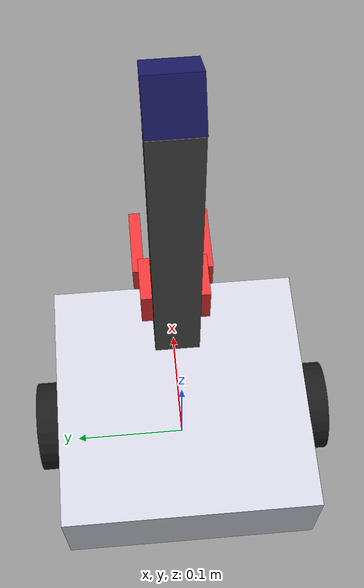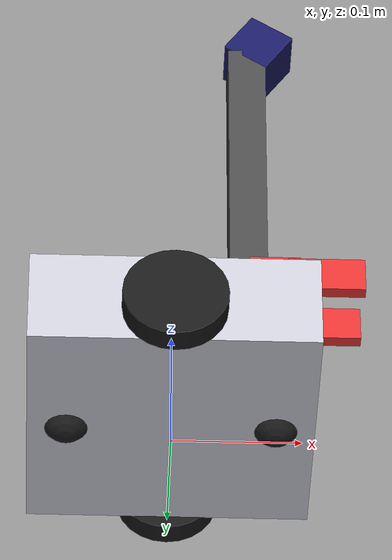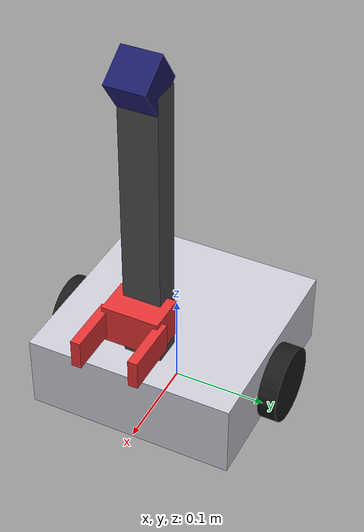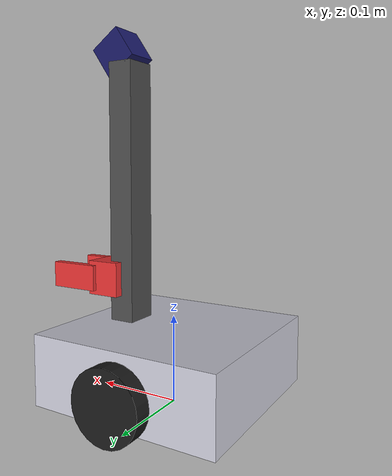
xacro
<?xml version="1.0"?>
<robot name="dummy_robot" xmlns:xacro="http://www.ros.org/wiki/xacro">

  <!-- MATERIALS -->
  <material name="chassis_color"><color rgba="0.8 0.8 0.85 1.0"/></material>
  <material name="wheel_color"><color rgba="0.1 0.1 0.1 1.0"/></material>
  <material name="mast_color"><color rgba="0.3 0.3 0.3 1.0"/></material>
  <material name="gripper_color"><color rgba="0.9 0.2 0.2 1.0"/></material>
  <material name="camera_color"><color rgba="0.1 0.1 0.4 1.0"/></material>

  <!-- BASE LINK -->
  <link name="base_footprint"/>

  <joint name="base_joint" type="fixed">
    <parent link="base_footprint"/>
    <child link="base_link"/>
    <origin xyz="0 0 0.05" rpy="0 0 0"/>
  </joint>

  <link name="base_link">
    <inertial>
      <mass value="1.2"/>
      <origin xyz="0 0 0.04"/>
      <inertia ixx="0.005" ixy="0" ixz="0" iyy="0.005" iyz="0" izz="0.008"/>
    </inertial>
    <visual>
      <geometry>
        <box size="0.22 0.22 0.08"/>
      </geometry>
      <material name="chassis_color"/>
    </visual>
    <collision>
      <geometry>
        <box size="0.22 0.22 0.08"/>
      </geometry>
    </collision>
  </link>

  <!-- LEFT WHEEL -->
  <joint name="left_wheel_joint" type="continuous">
    <parent link="base_link"/>
    <child link="left_wheel"/>
    <origin xyz="0 0.12 -0.01" rpy="-1.5708 0 0"/>
    <axis xyz="0 0 1"/>
    <dynamics damping="0.1" friction="0.05"/>
  </joint>

  <link name="left_wheel">
    <inertial>
      <mass value="0.2"/>
      <inertia ixx="0.0002" ixy="0" ixz="0" iyy="0.0002" iyz="0" izz="0.0002"/>
    </inertial>
    <visual>
      <geometry>
        <cylinder radius="0.04" length="0.02"/>
      </geometry>
      <material name="wheel_color"/>
    </visual>
    <collision>
      <geometry>
        <cylinder radius="0.04" length="0.02"/>
      </geometry>
      <surface>
        <friction>
          <ode>
            <mu>10.0</mu>
            <mu2>10.0</mu2>
            <kp>1000000.0</kp>
            <kd>10.0</kd>
          </ode>
        </friction>
      </surface>
    </collision>
  </link>

  <!-- RIGHT WHEEL -->
  <joint name="right_wheel_joint" type="continuous">
    <parent link="base_link"/>
    <child link="right_wheel"/>
    <origin xyz="0 -0.12 -0.01" rpy="-1.5708 0 0"/>
    <axis xyz="0 0 1"/>
    <dynamics damping="0.1" friction="0.05"/>
  </joint>

  <link name="right_wheel">
    <inertial>
      <mass value="0.2"/>
      <inertia ixx="0.0002" ixy="0" ixz="0" iyy="0.0002" iyz="0" izz="0.0002"/>
    </inertial>
    <visual>
      <geometry>
        <cylinder radius="0.04" length="0.02"/>
      </geometry>
      <material name="wheel_color"/>
    </visual>
    <collision>
      <geometry>
        <cylinder radius="0.04" length="0.02"/>
      </geometry>
      <surface>
        <friction>
          <ode>
            <mu>10.0</mu>
            <mu2>10.0</mu2>
            <kp>1000000.0</kp>
            <kd>10.0</kd>
          </ode>
        </friction>
      </surface>
    </collision>
  </link>

  <!-- FRONT CASTER (Frictionless Glider - Zero Drag) -->
  <joint name="front_caster_joint" type="fixed">
    <parent link="base_link"/>
    <child link="front_caster"/>
    <origin xyz="0.08 0 -0.029" rpy="0 0 0"/>
  </joint>

  <link name="front_caster">
    <visual>
      <geometry><sphere radius="0.02"/></geometry>
      <material name="wheel_color"/>
    </visual>
    <collision>
      <geometry><sphere radius="0.019"/></geometry>
      <surface>
        <friction>
          <ode>
            <mu>0.0</mu>
            <mu2>0.0</mu2>
            <slip1>1.0</slip1>
            <slip2>1.0</slip2>
          </ode>
        </friction>
      </surface>
    </collision>
  </link>

  <!-- REAR CASTER (Frictionless Glider - Zero Drag) -->
  <joint name="rear_caster_joint" type="fixed">
    <parent link="base_link"/>
    <child link="rear_caster"/>
    <origin xyz="-0.08 0 -0.029" rpy="0 0 0"/>
  </joint>

  <link name="rear_caster">
    <visual>
      <geometry><sphere radius="0.02"/></geometry>
      <material name="wheel_color"/>
    </visual>
    <collision>
      <geometry><sphere radius="0.019"/></geometry>
      <surface>
        <friction>
          <ode>
            <mu>0.0</mu>
            <mu2>0.0</mu2>
            <slip1>1.0</slip1>
            <slip2>1.0</slip2>
          </ode>
        </friction>
      </surface>
    </collision>
  </link>

  <!-- VERTICAL LIFT MAST -->
  <joint name="mast_joint" type="fixed">
    <parent link="base_link"/>
    <child link="mast_link"/>
    <origin xyz="0.06 0 0.04" rpy="0 0 0"/>
  </joint>

  <link name="mast_link">
    <visual>
      <origin xyz="0 0 0.15" rpy="0 0 0"/>
      <geometry><box size="0.03 0.04 0.30"/></geometry>
      <material name="mast_color"/>
    </visual>
    <collision>
      <origin xyz="0 0 0.15" rpy="0 0 0"/>
      <geometry><box size="0.03 0.04 0.30"/></geometry>
    </collision>
  </link>

  <!-- LIFT SLIDER (PRISMATIC JOINT FOR SERVO ELEVATION) -->
  <joint name="lift_joint" type="prismatic">
    <parent link="mast_link"/>
    <child link="lift_carriage"/>
    <origin xyz="0.02 0 0.05" rpy="0 0 0"/>
    <axis xyz="0 0 1"/>
    <limit lower="0.0" upper="0.22" effort="10.0" velocity="0.1"/>
  </joint>

  <link name="lift_carriage">
    <visual>
      <geometry><box size="0.04 0.06 0.04"/></geometry>
      <material name="gripper_color"/>
    </visual>
    <collision>
      <geometry><box size="0.04 0.06 0.04"/></geometry>
    </collision>
  </link>

  <!-- GRIPPER FINGER LEFT -->
  <joint name="left_finger_joint" type="prismatic">
    <parent link="lift_carriage"/>
    <child link="left_finger"/>
    <origin xyz="0.04 0.03 0" rpy="0 0 0"/>
    <axis xyz="0 1 0"/>
    <limit lower="-0.01" upper="0.03" effort="5.0" velocity="0.05"/>
  </joint>

  <link name="left_finger">
    <visual>
      <geometry><box size="0.06 0.01 0.03"/></geometry>
      <material name="gripper_color"/>
    </visual>
    <collision>
      <geometry><box size="0.06 0.01 0.03"/></geometry>
      <surface><friction><ode><mu>5.0</mu><mu2>5.0</mu2></ode></friction></surface>
    </collision>
  </link>

  <!-- GRIPPER FINGER RIGHT -->
  <joint name="right_finger_joint" type="prismatic">
    <parent link="lift_carriage"/>
    <child link="right_finger"/>
    <origin xyz="0.04 -0.03 0" rpy="0 0 0"/>
    <axis xyz="0 -1 0"/>
    <limit lower="-0.01" upper="0.03" effort="5.0" velocity="0.05"/>
  </joint>

  <link name="right_finger">
    <visual>
      <geometry><box size="0.06 0.01 0.03"/></geometry>
      <material name="gripper_color"/>
    </visual>
    <collision>
      <geometry><box size="0.06 0.01 0.03"/></geometry>
      <surface><friction><ode><mu>5.0</mu><mu2>5.0</mu2></ode></friction></surface>
    </collision>
  </link>

  <!-- ESP32-CAM MOUNT & CAMERA SENSOR -->
  <joint name="camera_joint" type="fixed">
    <parent link="mast_link"/>
    <child link="camera_link"/>
    <origin xyz="0.01 0 0.31" rpy="0 0.60 0"/>
  </joint>

  <link name="camera_link">
    <visual>
      <geometry><box size="0.04 0.04 0.04"/></geometry>
      <material name="camera_color"/>
    </visual>
    <collision>
      <geometry><box size="0.04 0.04 0.04"/></geometry>
    </collision>
  </link>

  <joint name="camera_optical_joint" type="fixed">
    <parent link="camera_link"/>
    <child link="camera_link_optical"/>
    <origin xyz="0 0 0" rpy="-1.5708 0 -1.5708"/>
  </joint>
  <link name="camera_link_optical"/>

  <!-- GAZEBO PLUGINS -->
  <!-- 1. Differential Drive Controller -->
  <gazebo>
    <plugin name="differential_drive_controller" filename="libgazebo_ros_diff_drive.so">
      <rosDebugLevel>na</rosDebugLevel>
      <updateRate>50</updateRate>
      <leftJoint>left_wheel_joint</leftJoint>
      <rightJoint>right_wheel_joint</rightJoint>
      <wheelSeparation>0.24</wheelSeparation>
      <wheelDiameter>0.08</wheelDiameter>
      <wheelAcceleration>10.0</wheelAcceleration>
      <wheelTorque>30</wheelTorque>
      <commandTopic>cmd_vel</commandTopic>
      <odometryTopic>odom</odometryTopic>
      <odometryFrame>odom</odometryFrame>
      <robotBaseFrame>base_footprint</robotBaseFrame>
      <publishWheelTF>false</publishWheelTF>
      <publishOdomTF>true</publishOdomTF>
      <publishWheelJointState>true</publishWheelJointState>
    </plugin>
  </gazebo>

  <!-- 2. ESP32-CAM Gazebo Camera Sensor Plugin -->
  <gazebo reference="camera_link">
    <sensor type="camera" name="esp32_cam">
      <update_rate>30.0</update_rate>
      <camera name="esp32_cam">
        <horizontal_fov>1.1</horizontal_fov>
        <image>
          <width>640</width>
          <height>480</height>
          <format>R8G8B8</format>
        </image>
        <clip>
          <near>0.05</near>
          <far>8.0</far>
        </clip>
      </camera>
      <plugin name="camera_controller" filename="libgazebo_ros_camera.so">
        <alwaysOn>true</alwaysOn>
        <updateRate>0.0</updateRate>
        <cameraName>camera</cameraName>
        <imageTopicName>image_raw</imageTopicName>
        <cameraInfoTopicName>camera_info</cameraInfoTopicName>
        <frameName>camera_link_optical</frameName>
      </plugin>
    </sensor>
  </gazebo>

  <!-- 3. Gazebo Vacuum Gripper Mechanism for 3D Cube Grip & Release -->
  <gazebo>
    <plugin name="gazebo_ros_vacuum_gripper" filename="libgazebo_ros_vacuum_gripper.so">
      <robotNamespace>/dummy_robot</robotNamespace>
      <bodyName>lift_carriage</bodyName>
      <topicName>gripper_switch</topicName>
      <maxForce>50.0</maxForce>
      <maxDistance>0.15</maxDistance>
    </plugin>
  </gazebo>

</robot>
